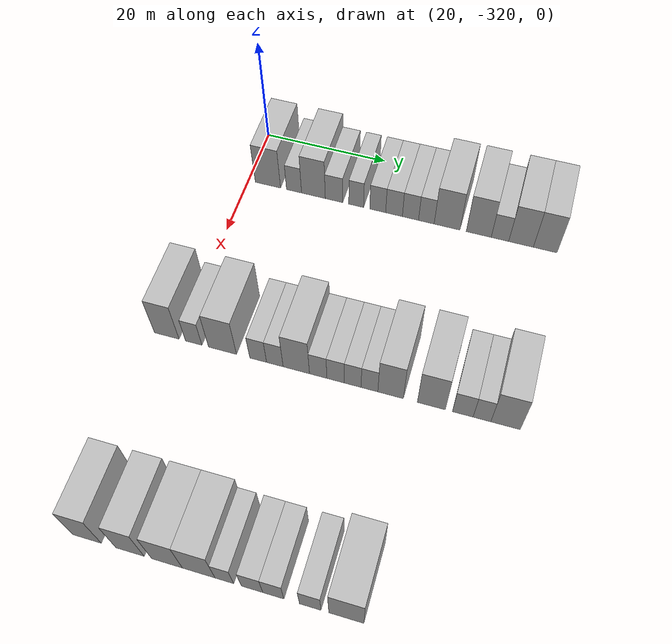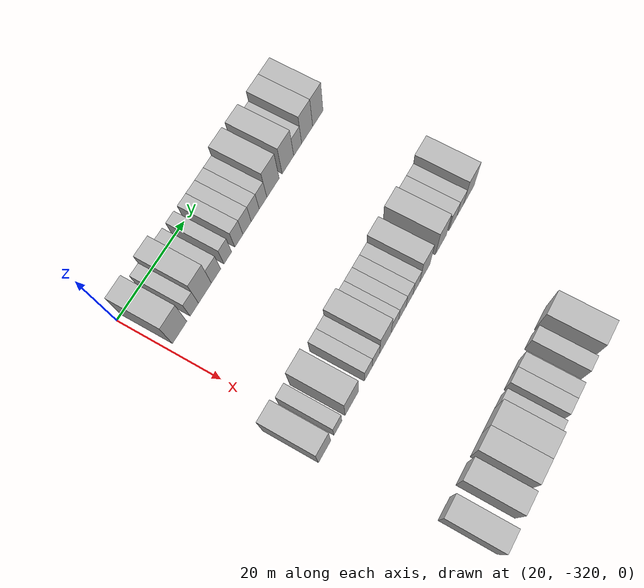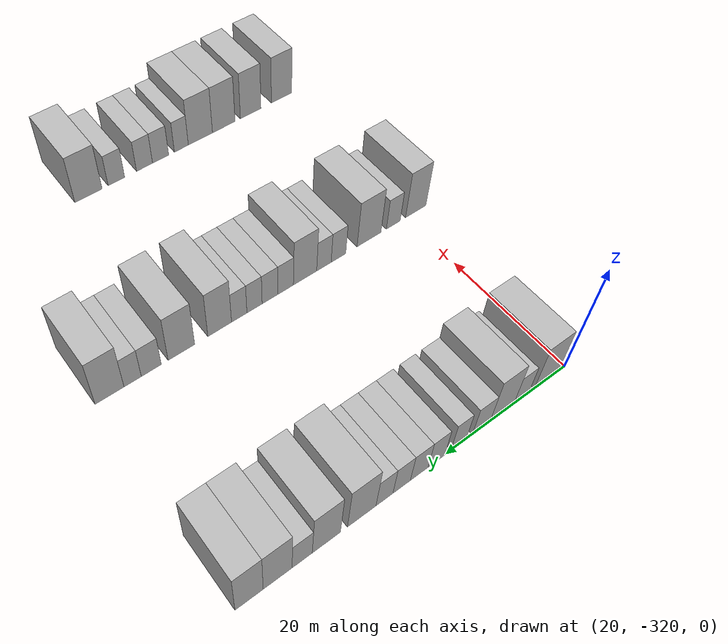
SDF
<sdf version="1.6">
 <world name="default">
  <model name="building_42">
   <static>1</static>
   <pose>25.0000 -316.7011 0 0.000000 0.000000 0.000000</pose>
   <link name="link">
    <pose>0 0 4.50 0 0 0</pose>
    <collision name="collision"><geometry><box><size>10.0000 4.2643 9.0000</size></box></geometry></collision>
    <visual name="visual">
     <cast_shadows>0</cast_shadows>
     <geometry><box><size>10.0000 4.2643 9.0000</size></box></geometry>
     <material>
      <script>
       <uri>model://HANNAS_wall/materials/scripts</uri>
       <uri>model://HANNAS_wall/materials/textures</uri>
       <name>vrc/HANNAS_wall</name>
      </script>
     </material>
    </visual>
   </link>
  </model>
  <model name="building_43">
   <static>1</static>
   <pose>25.0000 -312.3109 0 0.000000 0.000000 0.000000</pose>
   <link name="link">
    <pose>0 0 3.00 0 0 0</pose>
    <collision name="collision"><geometry><box><size>10.0000 2.5159 6.0000</size></box></geometry></collision>
    <visual name="visual">
     <cast_shadows>0</cast_shadows>
     <geometry><box><size>10.0000 2.5159 6.0000</size></box></geometry>
     <material>
      <script>
       <uri>model://HANNAS_wall/materials/scripts</uri>
       <uri>model://HANNAS_wall/materials/textures</uri>
       <name>vrc/HANNAS_wall</name>
      </script>
     </material>
    </visual>
   </link>
  </model>
  <model name="building_44">
   <static>1</static>
   <pose>25.0000 -309.0761 0 0.000000 0.000000 0.000000</pose>
   <link name="link">
    <pose>0 0 4.50 0 0 0</pose>
    <collision name="collision"><geometry><box><size>10.0000 3.9538 9.0000</size></box></geometry></collision>
    <visual name="visual">
     <cast_shadows>0</cast_shadows>
     <geometry><box><size>10.0000 3.9538 9.0000</size></box></geometry>
     <material>
      <script>
       <uri>model://HANNAS_wall/materials/scripts</uri>
       <uri>model://HANNAS_wall/materials/textures</uri>
       <name>vrc/HANNAS_wall</name>
      </script>
     </material>
    </visual>
   </link>
  </model>
  <model name="building_45">
   <static>1</static>
   <pose>25.0000 -305.6563 0 0.000000 0.000000 0.000000</pose>
   <link name="link">
    <pose>0 0 3.00 0 0 0</pose>
    <collision name="collision"><geometry><box><size>10.0000 2.8857 6.0000</size></box></geometry></collision>
    <visual name="visual">
     <cast_shadows>0</cast_shadows>
     <geometry><box><size>10.0000 2.8857 6.0000</size></box></geometry>
     <material>
      <script>
       <uri>model://HANNAS_wall/materials/scripts</uri>
       <uri>model://HANNAS_wall/materials/textures</uri>
       <name>vrc/HANNAS_wall</name>
      </script>
     </material>
    </visual>
   </link>
  </model>
  <model name="building_46">
   <static>1</static>
   <pose>25.0000 -302.0009 0 0.000000 0.000000 0.000000</pose>
   <link name="link">
    <pose>0 0 3.00 0 0 0</pose>
    <collision name="collision"><geometry><box><size>10.0000 2.4250 6.0000</size></box></geometry></collision>
    <visual name="visual">
     <cast_shadows>0</cast_shadows>
     <geometry><box><size>10.0000 2.4250 6.0000</size></box></geometry>
     <material>
      <script>
       <uri>model://HANNAS_wall/materials/scripts</uri>
       <uri>model://HANNAS_wall/materials/textures</uri>
       <name>vrc/HANNAS_wall</name>
      </script>
     </material>
    </visual>
   </link>
  </model>
  <model name="building_47">
   <static>1</static>
   <pose>25.0000 -298.4936 0 0.000000 0.000000 0.000000</pose>
   <link name="link">
    <pose>0 0 3.00 0 0 0</pose>
    <collision name="collision"><geometry><box><size>10.0000 2.5896 6.0000</size></box></geometry></collision>
    <visual name="visual">
     <cast_shadows>0</cast_shadows>
     <geometry><box><size>10.0000 2.5896 6.0000</size></box></geometry>
     <material>
      <script>
       <uri>model://HANNAS_wall/materials/scripts</uri>
       <uri>model://HANNAS_wall/materials/textures</uri>
       <name>vrc/HANNAS_wall</name>
      </script>
     </material>
    </visual>
   </link>
  </model>
  <model name="building_48">
   <static>1</static>
   <pose>25.0000 -295.8456 0 0.000000 0.000000 0.000000</pose>
   <link name="link">
    <pose>0 0 3.00 0 0 0</pose>
    <collision name="collision"><geometry><box><size>10.0000 2.7064 6.0000</size></box></geometry></collision>
    <visual name="visual">
     <cast_shadows>0</cast_shadows>
     <geometry><box><size>10.0000 2.7064 6.0000</size></box></geometry>
     <material>
      <script>
       <uri>model://HANNAS_wall/materials/scripts</uri>
       <uri>model://HANNAS_wall/materials/textures</uri>
       <name>vrc/HANNAS_wall</name>
      </script>
     </material>
    </visual>
   </link>
  </model>
  <model name="building_49">
   <static>1</static>
   <pose>25.0000 -293.1895 0 0.000000 0.000000 0.000000</pose>
   <link name="link">
    <pose>0 0 3.00 0 0 0</pose>
    <collision name="collision"><geometry><box><size>10.0000 2.6058 6.0000</size></box></geometry></collision>
    <visual name="visual">
     <cast_shadows>0</cast_shadows>
     <geometry><box><size>10.0000 2.6058 6.0000</size></box></geometry>
     <material>
      <script>
       <uri>model://HANNAS_wall/materials/scripts</uri>
       <uri>model://HANNAS_wall/materials/textures</uri>
       <name>vrc/HANNAS_wall</name>
      </script>
     </material>
    </visual>
   </link>
  </model>
  <model name="building_50">
   <static>1</static>
   <pose>25.0000 -290.6350 0 0.000000 0.000000 0.000000</pose>
   <link name="link">
    <pose>0 0 3.00 0 0 0</pose>
    <collision name="collision"><geometry><box><size>10.0000 2.5033 6.0000</size></box></geometry></collision>
    <visual name="visual">
     <cast_shadows>0</cast_shadows>
     <geometry><box><size>10.0000 2.5033 6.0000</size></box></geometry>
     <material>
      <script>
       <uri>model://HANNAS_wall/materials/scripts</uri>
       <uri>model://HANNAS_wall/materials/textures</uri>
       <name>vrc/HANNAS_wall</name>
      </script>
     </material>
    </visual>
   </link>
  </model>
  <model name="building_51">
   <static>1</static>
   <pose>25.0000 -287.3302 0 0.000000 0.000000 0.000000</pose>
   <link name="link">
    <pose>0 0 4.50 0 0 0</pose>
    <collision name="collision"><geometry><box><size>10.0000 4.1063 9.0000</size></box></geometry></collision>
    <visual name="visual">
     <cast_shadows>0</cast_shadows>
     <geometry><box><size>10.0000 4.1063 9.0000</size></box></geometry>
     <material>
      <script>
       <uri>model://HANNAS_wall/materials/scripts</uri>
       <uri>model://HANNAS_wall/materials/textures</uri>
       <name>vrc/HANNAS_wall</name>
      </script>
     </material>
    </visual>
   </link>
  </model>
  <model name="building_52">
   <static>1</static>
   <pose>25.0000 -282.3142 0 0.000000 0.000000 0.000000</pose>
   <link name="link">
    <pose>0 0 4.50 0 0 0</pose>
    <collision name="collision"><geometry><box><size>10.0000 3.9257 9.0000</size></box></geometry></collision>
    <visual name="visual">
     <cast_shadows>0</cast_shadows>
     <geometry><box><size>10.0000 3.9257 9.0000</size></box></geometry>
     <material>
      <script>
       <uri>model://HANNAS_wall/materials/scripts</uri>
       <uri>model://HANNAS_wall/materials/textures</uri>
       <name>vrc/HANNAS_wall</name>
      </script>
     </material>
    </visual>
   </link>
  </model>
  <model name="building_53">
   <static>1</static>
   <pose>25.0000 -278.9817 0 0.000000 0.000000 0.000000</pose>
   <link name="link">
    <pose>0 0 3.00 0 0 0</pose>
    <collision name="collision"><geometry><box><size>10.0000 2.7393 6.0000</size></box></geometry></collision>
    <visual name="visual">
     <cast_shadows>0</cast_shadows>
     <geometry><box><size>10.0000 2.7393 6.0000</size></box></geometry>
     <material>
      <script>
       <uri>model://HANNAS_wall/materials/scripts</uri>
       <uri>model://HANNAS_wall/materials/textures</uri>
       <name>vrc/HANNAS_wall</name>
      </script>
     </material>
    </visual>
   </link>
  </model>
  <model name="building_54">
   <static>1</static>
   <pose>25.0000 -275.6976 0 0.000000 0.000000 0.000000</pose>
   <link name="link">
    <pose>0 0 4.50 0 0 0</pose>
    <collision name="collision"><geometry><box><size>10.0000 3.8290 9.0000</size></box></geometry></collision>
    <visual name="visual">
     <cast_shadows>0</cast_shadows>
     <geometry><box><size>10.0000 3.8290 9.0000</size></box></geometry>
     <material>
      <script>
       <uri>model://HANNAS_wall/materials/scripts</uri>
       <uri>model://HANNAS_wall/materials/textures</uri>
       <name>vrc/HANNAS_wall</name>
      </script>
     </material>
    </visual>
   </link>
  </model>
  <model name="building_55">
   <static>1</static>
   <pose>25.0000 -271.9595 0 0.000000 0.000000 0.000000</pose>
   <link name="link">
    <pose>0 0 4.50 0 0 0</pose>
    <collision name="collision"><geometry><box><size>10.0000 3.6472 9.0000</size></box></geometry></collision>
    <visual name="visual">
     <cast_shadows>0</cast_shadows>
     <geometry><box><size>10.0000 3.6472 9.0000</size></box></geometry>
     <material>
      <script>
       <uri>model://HANNAS_wall/materials/scripts</uri>
       <uri>model://HANNAS_wall/materials/textures</uri>
       <name>vrc/HANNAS_wall</name>
      </script>
     </material>
    </visual>
   </link>
  </model>
  <model name="building_276">
   <static>1</static>
   <pose>55.0000 -321.8390 0 0.000000 0.000000 0.000000</pose>
   <link name="link">
    <pose>0 0 4.50 0 0 0</pose>
    <collision name="collision"><geometry><box><size>10.0000 3.8078 9.0000</size></box></geometry></collision>
    <visual name="visual">
     <cast_shadows>0</cast_shadows>
     <geometry><box><size>10.0000 3.8078 9.0000</size></box></geometry>
     <material>
      <script>
       <uri>model://HANNAS_wall/materials/scripts</uri>
       <uri>model://HANNAS_wall/materials/textures</uri>
       <name>vrc/HANNAS_wall</name>
      </script>
     </material>
    </visual>
   </link>
  </model>
  <model name="building_277">
   <static>1</static>
   <pose>55.0000 -317.6791 0 0.000000 0.000000 0.000000</pose>
   <link name="link">
    <pose>0 0 3.00 0 0 0</pose>
    <collision name="collision"><geometry><box><size>10.0000 2.5119 6.0000</size></box></geometry></collision>
    <visual name="visual">
     <cast_shadows>0</cast_shadows>
     <geometry><box><size>10.0000 2.5119 6.0000</size></box></geometry>
     <material>
      <script>
       <uri>model://HANNAS_wall/materials/scripts</uri>
       <uri>model://HANNAS_wall/materials/textures</uri>
       <name>vrc/HANNAS_wall</name>
      </script>
     </material>
    </visual>
   </link>
  </model>
  <model name="building_278">
   <static>1</static>
   <pose>55.0000 -313.2943 0 0.000000 0.000000 0.000000</pose>
   <link name="link">
    <pose>0 0 4.50 0 0 0</pose>
    <collision name="collision"><geometry><box><size>10.0000 4.2576 9.0000</size></box></geometry></collision>
    <visual name="visual">
     <cast_shadows>0</cast_shadows>
     <geometry><box><size>10.0000 4.2576 9.0000</size></box></geometry>
     <material>
      <script>
       <uri>model://HANNAS_wall/materials/scripts</uri>
       <uri>model://HANNAS_wall/materials/textures</uri>
       <name>vrc/HANNAS_wall</name>
      </script>
     </material>
    </visual>
   </link>
  </model>
  <model name="building_279">
   <static>1</static>
   <pose>55.0000 -307.9048 0 0.000000 0.000000 0.000000</pose>
   <link name="link">
    <pose>0 0 3.00 0 0 0</pose>
    <collision name="collision"><geometry><box><size>10.0000 2.5215 6.0000</size></box></geometry></collision>
    <visual name="visual">
     <cast_shadows>0</cast_shadows>
     <geometry><box><size>10.0000 2.5215 6.0000</size></box></geometry>
     <material>
      <script>
       <uri>model://HANNAS_wall/materials/scripts</uri>
       <uri>model://HANNAS_wall/materials/textures</uri>
       <name>vrc/HANNAS_wall</name>
      </script>
     </material>
    </visual>
   </link>
  </model>
  <model name="building_280">
   <static>1</static>
   <pose>55.0000 -305.4098 0 0.000000 0.000000 0.000000</pose>
   <link name="link">
    <pose>0 0 3.00 0 0 0</pose>
    <collision name="collision"><geometry><box><size>10.0000 2.4685 6.0000</size></box></geometry></collision>
    <visual name="visual">
     <cast_shadows>0</cast_shadows>
     <geometry><box><size>10.0000 2.4685 6.0000</size></box></geometry>
     <material>
      <script>
       <uri>model://HANNAS_wall/materials/scripts</uri>
       <uri>model://HANNAS_wall/materials/textures</uri>
       <name>vrc/HANNAS_wall</name>
      </script>
     </material>
    </visual>
   </link>
  </model>
  <model name="building_281">
   <static>1</static>
   <pose>55.0000 -302.2275 0 0.000000 0.000000 0.000000</pose>
   <link name="link">
    <pose>0 0 4.50 0 0 0</pose>
    <collision name="collision"><geometry><box><size>10.0000 3.8961 9.0000</size></box></geometry></collision>
    <visual name="visual">
     <cast_shadows>0</cast_shadows>
     <geometry><box><size>10.0000 3.8961 9.0000</size></box></geometry>
     <material>
      <script>
       <uri>model://HANNAS_wall/materials/scripts</uri>
       <uri>model://HANNAS_wall/materials/textures</uri>
       <name>vrc/HANNAS_wall</name>
      </script>
     </material>
    </visual>
   </link>
  </model>
  <model name="building_282">
   <static>1</static>
   <pose>55.0000 -299.0048 0 0.000000 0.000000 0.000000</pose>
   <link name="link">
    <pose>0 0 3.00 0 0 0</pose>
    <collision name="collision"><geometry><box><size>10.0000 2.5494 6.0000</size></box></geometry></collision>
    <visual name="visual">
     <cast_shadows>0</cast_shadows>
     <geometry><box><size>10.0000 2.5494 6.0000</size></box></geometry>
     <material>
      <script>
       <uri>model://HANNAS_wall/materials/scripts</uri>
       <uri>model://HANNAS_wall/materials/textures</uri>
       <name>vrc/HANNAS_wall</name>
      </script>
     </material>
    </visual>
   </link>
  </model>
  <model name="building_283">
   <static>1</static>
   <pose>55.0000 -296.4516 0 0.000000 0.000000 0.000000</pose>
   <link name="link">
    <pose>0 0 3.00 0 0 0</pose>
    <collision name="collision"><geometry><box><size>10.0000 2.5568 6.0000</size></box></geometry></collision>
    <visual name="visual">
     <cast_shadows>0</cast_shadows>
     <geometry><box><size>10.0000 2.5568 6.0000</size></box></geometry>
     <material>
      <script>
       <uri>model://HANNAS_wall/materials/scripts</uri>
       <uri>model://HANNAS_wall/materials/textures</uri>
       <name>vrc/HANNAS_wall</name>
      </script>
     </material>
    </visual>
   </link>
  </model>
  <model name="building_284">
   <static>1</static>
   <pose>55.0000 -293.9595 0 0.000000 0.000000 0.000000</pose>
   <link name="link">
    <pose>0 0 3.00 0 0 0</pose>
    <collision name="collision"><geometry><box><size>10.0000 2.4274 6.0000</size></box></geometry></collision>
    <visual name="visual">
     <cast_shadows>0</cast_shadows>
     <geometry><box><size>10.0000 2.4274 6.0000</size></box></geometry>
     <material>
      <script>
       <uri>model://HANNAS_wall/materials/scripts</uri>
       <uri>model://HANNAS_wall/materials/textures</uri>
       <name>vrc/HANNAS_wall</name>
      </script>
     </material>
    </visual>
   </link>
  </model>
  <model name="building_285">
   <static>1</static>
   <pose>55.0000 -291.5393 0 0.000000 0.000000 0.000000</pose>
   <link name="link">
    <pose>0 0 3.00 0 0 0</pose>
    <collision name="collision"><geometry><box><size>10.0000 2.4131 6.0000</size></box></geometry></collision>
    <visual name="visual">
     <cast_shadows>0</cast_shadows>
     <geometry><box><size>10.0000 2.4131 6.0000</size></box></geometry>
     <material>
      <script>
       <uri>model://HANNAS_wall/materials/scripts</uri>
       <uri>model://HANNAS_wall/materials/textures</uri>
       <name>vrc/HANNAS_wall</name>
      </script>
     </material>
    </visual>
   </link>
  </model>
  <model name="building_286">
   <static>1</static>
   <pose>55.0000 -288.5036 0 0.000000 0.000000 0.000000</pose>
   <link name="link">
    <pose>0 0 4.50 0 0 0</pose>
    <collision name="collision"><geometry><box><size>10.0000 3.6582 9.0000</size></box></geometry></collision>
    <visual name="visual">
     <cast_shadows>0</cast_shadows>
     <geometry><box><size>10.0000 3.6582 9.0000</size></box></geometry>
     <material>
      <script>
       <uri>model://HANNAS_wall/materials/scripts</uri>
       <uri>model://HANNAS_wall/materials/textures</uri>
       <name>vrc/HANNAS_wall</name>
      </script>
     </material>
    </visual>
   </link>
  </model>
  <model name="building_287">
   <static>1</static>
   <pose>55.0000 -282.6972 0 0.000000 0.000000 0.000000</pose>
   <link name="link">
    <pose>0 0 4.50 0 0 0</pose>
    <collision name="collision"><geometry><box><size>10.0000 3.9546 9.0000</size></box></geometry></collision>
    <visual name="visual">
     <cast_shadows>0</cast_shadows>
     <geometry><box><size>10.0000 3.9546 9.0000</size></box></geometry>
     <material>
      <script>
       <uri>model://HANNAS_wall/materials/scripts</uri>
       <uri>model://HANNAS_wall/materials/textures</uri>
       <name>vrc/HANNAS_wall</name>
      </script>
     </material>
    </visual>
   </link>
  </model>
  <model name="building_288">
   <static>1</static>
   <pose>55.0000 -278.2724 0 0.000000 0.000000 0.000000</pose>
   <link name="link">
    <pose>0 0 3.00 0 0 0</pose>
    <collision name="collision"><geometry><box><size>10.0000 2.8952 6.0000</size></box></geometry></collision>
    <visual name="visual">
     <cast_shadows>0</cast_shadows>
     <geometry><box><size>10.0000 2.8952 6.0000</size></box></geometry>
     <material>
      <script>
       <uri>model://HANNAS_wall/materials/scripts</uri>
       <uri>model://HANNAS_wall/materials/textures</uri>
       <name>vrc/HANNAS_wall</name>
      </script>
     </material>
    </visual>
   </link>
  </model>
  <model name="building_289">
   <static>1</static>
   <pose>55.0000 -275.5951 0 0.000000 0.000000 0.000000</pose>
   <link name="link">
    <pose>0 0 3.00 0 0 0</pose>
    <collision name="collision"><geometry><box><size>10.0000 2.4593 6.0000</size></box></geometry></collision>
    <visual name="visual">
     <cast_shadows>0</cast_shadows>
     <geometry><box><size>10.0000 2.4593 6.0000</size></box></geometry>
     <material>
      <script>
       <uri>model://HANNAS_wall/materials/scripts</uri>
       <uri>model://HANNAS_wall/materials/textures</uri>
       <name>vrc/HANNAS_wall</name>
      </script>
     </material>
    </visual>
   </link>
  </model>
  <model name="building_290">
   <static>1</static>
   <pose>55.0000 -272.3375 0 0.000000 0.000000 0.000000</pose>
   <link name="link">
    <pose>0 0 4.50 0 0 0</pose>
    <collision name="collision"><geometry><box><size>10.0000 4.0560 9.0000</size></box></geometry></collision>
    <visual name="visual">
     <cast_shadows>0</cast_shadows>
     <geometry><box><size>10.0000 4.0560 9.0000</size></box></geometry>
     <material>
      <script>
       <uri>model://HANNAS_wall/materials/scripts</uri>
       <uri>model://HANNAS_wall/materials/textures</uri>
       <name>vrc/HANNAS_wall</name>
      </script>
     </material>
    </visual>
   </link>
  </model>
  <model name="building_515">
   <static>1</static>
   <pose>85.0000 -320.4352 0 0.000000 0.000000 0.000000</pose>
   <link name="link">
    <pose>0 0 4.50 0 0 0</pose>
    <collision name="collision"><geometry><box><size>10.0000 3.9270 9.0000</size></box></geometry></collision>
    <visual name="visual">
     <cast_shadows>0</cast_shadows>
     <geometry><box><size>10.0000 3.9270 9.0000</size></box></geometry>
     <material>
      <script>
       <uri>model://HANNAS_wall/materials/scripts</uri>
       <uri>model://HANNAS_wall/materials/textures</uri>
       <name>vrc/HANNAS_wall</name>
      </script>
     </material>
    </visual>
   </link>
  </model>
  <model name="building_516">
   <static>1</static>
   <pose>85.0000 -314.5349 0 0.000000 0.000000 0.000000</pose>
   <link name="link">
    <pose>0 0 4.50 0 0 0</pose>
    <collision name="collision"><geometry><box><size>10.0000 3.8736 9.0000</size></box></geometry></collision>
    <visual name="visual">
     <cast_shadows>0</cast_shadows>
     <geometry><box><size>10.0000 3.8736 9.0000</size></box></geometry>
     <material>
      <script>
       <uri>model://HANNAS_wall/materials/scripts</uri>
       <uri>model://HANNAS_wall/materials/textures</uri>
       <name>vrc/HANNAS_wall</name>
      </script>
     </material>
    </visual>
   </link>
  </model>
  <model name="building_517">
   <static>1</static>
   <pose>85.0000 -309.5278 0 0.000000 0.000000 0.000000</pose>
   <link name="link">
    <pose>0 0 4.50 0 0 0</pose>
    <collision name="collision"><geometry><box><size>10.0000 4.1407 9.0000</size></box></geometry></collision>
    <visual name="visual">
     <cast_shadows>0</cast_shadows>
     <geometry><box><size>10.0000 4.1407 9.0000</size></box></geometry>
     <material>
      <script>
       <uri>model://HANNAS_wall/materials/scripts</uri>
       <uri>model://HANNAS_wall/materials/textures</uri>
       <name>vrc/HANNAS_wall</name>
      </script>
     </material>
    </visual>
   </link>
  </model>
  <model name="building_518">
   <static>1</static>
   <pose>85.0000 -305.2858 0 0.000000 0.000000 0.000000</pose>
   <link name="link">
    <pose>0 0 4.50 0 0 0</pose>
    <collision name="collision"><geometry><box><size>10.0000 4.3432 9.0000</size></box></geometry></collision>
    <visual name="visual">
     <cast_shadows>0</cast_shadows>
     <geometry><box><size>10.0000 4.3432 9.0000</size></box></geometry>
     <material>
      <script>
       <uri>model://HANNAS_wall/materials/scripts</uri>
       <uri>model://HANNAS_wall/materials/textures</uri>
       <name>vrc/HANNAS_wall</name>
      </script>
     </material>
    </visual>
   </link>
  </model>
  <model name="building_519">
   <static>1</static>
   <pose>85.0000 -301.8820 0 0.000000 0.000000 0.000000</pose>
   <link name="link">
    <pose>0 0 3.00 0 0 0</pose>
    <collision name="collision"><geometry><box><size>10.0000 2.4645 6.0000</size></box></geometry></collision>
    <visual name="visual">
     <cast_shadows>0</cast_shadows>
     <geometry><box><size>10.0000 2.4645 6.0000</size></box></geometry>
     <material>
      <script>
       <uri>model://HANNAS_wall/materials/scripts</uri>
       <uri>model://HANNAS_wall/materials/textures</uri>
       <name>vrc/HANNAS_wall</name>
      </script>
     </material>
    </visual>
   </link>
  </model>
  <model name="building_520">
   <static>1</static>
   <pose>85.0000 -298.2511 0 0.000000 0.000000 0.000000</pose>
   <link name="link">
    <pose>0 0 3.00 0 0 0</pose>
    <collision name="collision"><geometry><box><size>10.0000 2.7973 6.0000</size></box></geometry></collision>
    <visual name="visual">
     <cast_shadows>0</cast_shadows>
     <geometry><box><size>10.0000 2.7973 6.0000</size></box></geometry>
     <material>
      <script>
       <uri>model://HANNAS_wall/materials/scripts</uri>
       <uri>model://HANNAS_wall/materials/textures</uri>
       <name>vrc/HANNAS_wall</name>
      </script>
     </material>
    </visual>
   </link>
  </model>
  <model name="building_521">
   <static>1</static>
   <pose>85.0000 -295.4843 0 0.000000 0.000000 0.000000</pose>
   <link name="link">
    <pose>0 0 3.00 0 0 0</pose>
    <collision name="collision"><geometry><box><size>10.0000 2.7363 6.0000</size></box></geometry></collision>
    <visual name="visual">
     <cast_shadows>0</cast_shadows>
     <geometry><box><size>10.0000 2.7363 6.0000</size></box></geometry>
     <material>
      <script>
       <uri>model://HANNAS_wall/materials/scripts</uri>
       <uri>model://HANNAS_wall/materials/textures</uri>
       <name>vrc/HANNAS_wall</name>
      </script>
     </material>
    </visual>
   </link>
  </model>
  <model name="building_522">
   <static>1</static>
   <pose>85.0000 -290.7405 0 0.000000 0.000000 0.000000</pose>
   <link name="link">
    <pose>0 0 3.00 0 0 0</pose>
    <collision name="collision"><geometry><box><size>10.0000 2.7514 6.0000</size></box></geometry></collision>
    <visual name="visual">
     <cast_shadows>0</cast_shadows>
     <geometry><box><size>10.0000 2.7514 6.0000</size></box></geometry>
     <material>
      <script>
       <uri>model://HANNAS_wall/materials/scripts</uri>
       <uri>model://HANNAS_wall/materials/textures</uri>
       <name>vrc/HANNAS_wall</name>
      </script>
     </material>
    </visual>
   </link>
  </model>
  <model name="building_523">
   <static>1</static>
   <pose>85.0000 -286.1537 0 0.000000 0.000000 0.000000</pose>
   <link name="link">
    <pose>0 0 4.50 0 0 0</pose>
    <collision name="collision"><geometry><box><size>10.0000 4.4220 9.0000</size></box></geometry></collision>
    <visual name="visual">
     <cast_shadows>0</cast_shadows>
     <geometry><box><size>10.0000 4.4220 9.0000</size></box></geometry>
     <material>
      <script>
       <uri>model://HANNAS_wall/materials/scripts</uri>
       <uri>model://HANNAS_wall/materials/textures</uri>
       <name>vrc/HANNAS_wall</name>
      </script>
     </material>
    </visual>
   </link>
  </model>
 </world>
</sdf>
